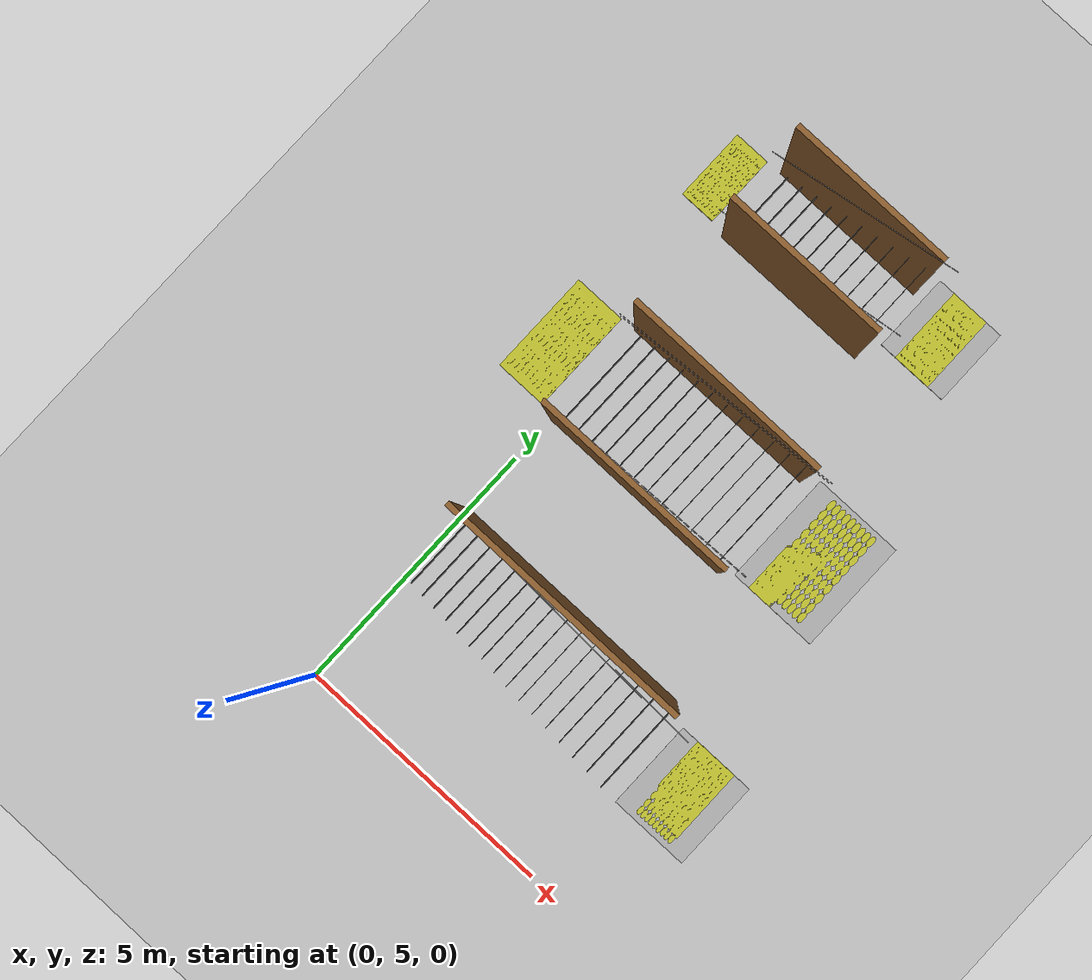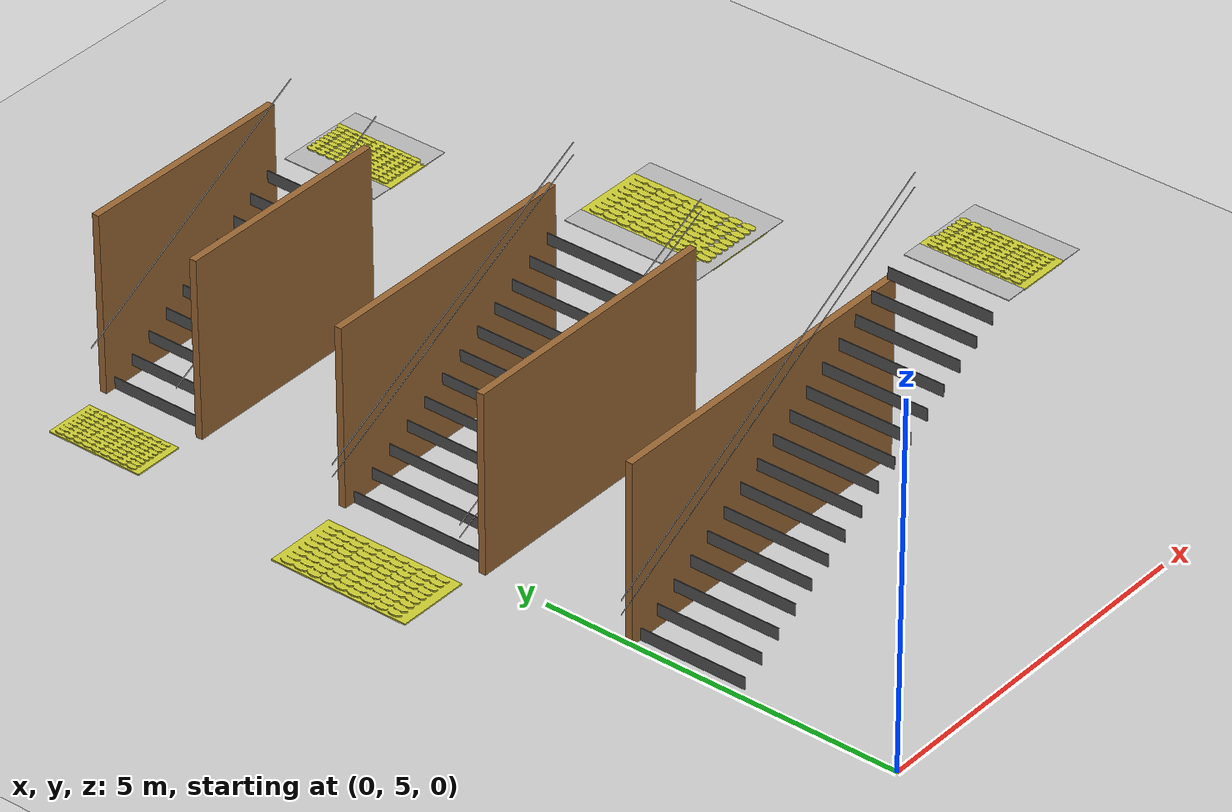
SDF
<sdf version="1.7">
 <world name="default">
  <include><uri>https://fuel.gazebosim.org/1.0/openrobotics/models/Ground%20Plane</uri></include>
  <include><uri>https://fuel.gazebosim.org/1.0/openrobotics/models/Sun</uri></include>
  <model name="tactile_strip_tactile_strip_after_e99f2752-ab1f-4d2a-a1d9-9a706f787795_514fd597-a8f3-4561-81c5-7cfd90c532dc">
   <static>true</static>
   <pose>5.624999999999998 8.0 2.7199999999999993 0 0 0</pose>
   <link name="link">
    <visual name="visual">
     <geometry>
      <mesh><uri>model://data/world-generator/assets/tactile_strip_unit.stl</uri><scale>0.75 1.5 1</scale></mesh>
     </geometry>
     <material><ambient>0.8 0.8 0.2 1</ambient><diffuse>0.8 0.8 0.2 1</diffuse></material>
    </visual>
    <collision name="collision"><geometry><box><size>0.75 1.5 0.02</size></box></geometry></collision>
   </link>
  </model>
  <model name="handrail_handrail_e99f2752-ab1f-4d2a-a1d9-9a706f787795_{'height': 0.95, 'extension_length': 0.3, 'offset_from_wall': 0.05}_4e0cbe52-9989-4e63-aa49-a05e3eff6bc6">
   <static>true</static>
   <pose>2.4 8.7 2.31 0 -0.5155490074589791 0</pose>
   <link name="link">
    <visual name="visual">
     <geometry>
      <mesh>
       <uri>model://data/world-generator/assets/handrail_unit.stl</uri>
       <scale>6.117100687861333 0.25 0.95</scale>
      </mesh>
     </geometry>
     <material><ambient>0.7 0.7 0.7 1</ambient><diffuse>0.7 0.7 0.7 1</diffuse></material>
    </visual>
    <collision name="collision">
     <geometry><cylinder><radius>0.125</radius><length>6.117100687861333</length></cylinder></geometry>
    </collision>
   </link>
  </model>
  <model name="handrail_handrail_e99f2752-ab1f-4d2a-a1d9-9a706f787795_{'height': 0.75, 'extension_length': 0.3, 'offset_from_wall': 0.05}_c0779a72-7dce-4da5-b469-8b89622a1f1a">
   <static>true</static>
   <pose>2.4 8.7 2.1100000000000003 0 -0.5155490074589791 0</pose>
   <link name="link">
    <visual name="visual">
     <geometry>
      <mesh>
       <uri>model://data/world-generator/assets/handrail_unit.stl</uri>
       <scale>6.117100687861333 0.25 0.75</scale>
      </mesh>
     </geometry>
     <material><ambient>0.7 0.7 0.7 1</ambient><diffuse>0.7 0.7 0.7 1</diffuse></material>
    </visual>
    <collision name="collision">
     <geometry><cylinder><radius>0.125</radius><length>6.117100687861333</length></cylinder></geometry>
    </collision>
   </link>
  </model>
  <model name="riser_riser_9279e2e1-6e9f-4bb0-81bc-6a40666967ec_043a1877-ea40-40bc-ae3c-dd26e49cc3e2">
   <static>true</static>
   <pose>0.15 8.0 0.0 0 0 0</pose>
   <link name="link">
    <visual name="visual">
     <geometry>
      <mesh><uri>model://data/world-generator/assets/riser_unit.stl</uri><scale>1 1.5 0.17</scale></mesh>
     </geometry>
     <material><ambient>0.3 0.3 0.3 1</ambient><diffuse>0.3 0.3 0.3 1</diffuse></material>
    </visual>
    <collision name="collision"><geometry><box><size>0.01 1.5 0.17</size></box></geometry></collision>
   </link>
  </model>
  <model name="riser_riser_a43ab379-733a-400a-8d28-5ad033e78ae4_2ded8f81-8b93-46ff-9e88-c8a0ccf28432">
   <static>true</static>
   <pose>0.44999999999999996 8.0 0.17 0 0 0</pose>
   <link name="link">
    <visual name="visual">
     <geometry>
      <mesh><uri>model://data/world-generator/assets/riser_unit.stl</uri><scale>1 1.5 0.17</scale></mesh>
     </geometry>
     <material><ambient>0.3 0.3 0.3 1</ambient><diffuse>0.3 0.3 0.3 1</diffuse></material>
    </visual>
    <collision name="collision"><geometry><box><size>0.01 1.5 0.17</size></box></geometry></collision>
   </link>
  </model>
  <model name="riser_riser_f6267ff2-eea4-447a-8004-f271e1d8e42b_fa8ed3f1-3ff9-4700-8cf1-3847c70e3324">
   <static>true</static>
   <pose>0.75 8.0 0.34 0 0 0</pose>
   <link name="link">
    <visual name="visual">
     <geometry>
      <mesh><uri>model://data/world-generator/assets/riser_unit.stl</uri><scale>1 1.5 0.17</scale></mesh>
     </geometry>
     <material><ambient>0.3 0.3 0.3 1</ambient><diffuse>0.3 0.3 0.3 1</diffuse></material>
    </visual>
    <collision name="collision"><geometry><box><size>0.01 1.5 0.17</size></box></geometry></collision>
   </link>
  </model>
  <model name="riser_riser_685879c6-fb81-41a2-a4d1-3b52f1c5dab6_7fd22378-8c4c-460a-b61f-0bb088b6a48c">
   <static>true</static>
   <pose>1.05 8.0 0.51 0 0 0</pose>
   <link name="link">
    <visual name="visual">
     <geometry>
      <mesh><uri>model://data/world-generator/assets/riser_unit.stl</uri><scale>1 1.5 0.17</scale></mesh>
     </geometry>
     <material><ambient>0.3 0.3 0.3 1</ambient><diffuse>0.3 0.3 0.3 1</diffuse></material>
    </visual>
    <collision name="collision"><geometry><box><size>0.01 1.5 0.17</size></box></geometry></collision>
   </link>
  </model>
  <model name="riser_riser_40349897-c3ab-4b66-9dcf-2767a300302b_2c7cd6ee-ca1e-4143-b250-db4054511e5a">
   <static>true</static>
   <pose>1.35 8.0 0.68 0 0 0</pose>
   <link name="link">
    <visual name="visual">
     <geometry>
      <mesh><uri>model://data/world-generator/assets/riser_unit.stl</uri><scale>1 1.5 0.17</scale></mesh>
     </geometry>
     <material><ambient>0.3 0.3 0.3 1</ambient><diffuse>0.3 0.3 0.3 1</diffuse></material>
    </visual>
    <collision name="collision"><geometry><box><size>0.01 1.5 0.17</size></box></geometry></collision>
   </link>
  </model>
  <model name="riser_riser_d326e7a7-658c-4800-a5f3-da62ebdc0ae2_8bf8be7a-5fbd-45b1-b0d9-92574366be86">
   <static>true</static>
   <pose>1.6500000000000001 8.0 0.8500000000000001 0 0 0</pose>
   <link name="link">
    <visual name="visual">
     <geometry>
      <mesh><uri>model://data/world-generator/assets/riser_unit.stl</uri><scale>1 1.5 0.17</scale></mesh>
     </geometry>
     <material><ambient>0.3 0.3 0.3 1</ambient><diffuse>0.3 0.3 0.3 1</diffuse></material>
    </visual>
    <collision name="collision"><geometry><box><size>0.01 1.5 0.17</size></box></geometry></collision>
   </link>
  </model>
  <model name="riser_riser_106647b5-8b85-4093-895f-2d1a50ac950b_bd218183-47c5-4515-9107-e2ebf88c227e">
   <static>true</static>
   <pose>1.9500000000000002 8.0 1.02 0 0 0</pose>
   <link name="link">
    <visual name="visual">
     <geometry>
      <mesh><uri>model://data/world-generator/assets/riser_unit.stl</uri><scale>1 1.5 0.17</scale></mesh>
     </geometry>
     <material><ambient>0.3 0.3 0.3 1</ambient><diffuse>0.3 0.3 0.3 1</diffuse></material>
    </visual>
    <collision name="collision"><geometry><box><size>0.01 1.5 0.17</size></box></geometry></collision>
   </link>
  </model>
  <model name="riser_riser_70d5e60e-101b-49a8-9775-bf4cb220a134_5b0fa1b0-189c-4769-bbe2-bc9fa8a426d7">
   <static>true</static>
   <pose>2.25 8.0 1.19 0 0 0</pose>
   <link name="link">
    <visual name="visual">
     <geometry>
      <mesh><uri>model://data/world-generator/assets/riser_unit.stl</uri><scale>1 1.5 0.17</scale></mesh>
     </geometry>
     <material><ambient>0.3 0.3 0.3 1</ambient><diffuse>0.3 0.3 0.3 1</diffuse></material>
    </visual>
    <collision name="collision"><geometry><box><size>0.01 1.5 0.17</size></box></geometry></collision>
   </link>
  </model>
  <model name="riser_riser_7f58af73-5285-4088-8d29-ced0b5c631ed_1576f5b9-5923-4c76-a85a-d97effd3f1ce">
   <static>true</static>
   <pose>2.55 8.0 1.3599999999999999 0 0 0</pose>
   <link name="link">
    <visual name="visual">
     <geometry>
      <mesh><uri>model://data/world-generator/assets/riser_unit.stl</uri><scale>1 1.5 0.17</scale></mesh>
     </geometry>
     <material><ambient>0.3 0.3 0.3 1</ambient><diffuse>0.3 0.3 0.3 1</diffuse></material>
    </visual>
    <collision name="collision"><geometry><box><size>0.01 1.5 0.17</size></box></geometry></collision>
   </link>
  </model>
  <model name="riser_riser_e186d29a-a671-4bb2-af89-5989b9bc7903_474552ea-487b-4f61-9c23-02fbe9d76db0">
   <static>true</static>
   <pose>2.8499999999999996 8.0 1.5299999999999998 0 0 0</pose>
   <link name="link">
    <visual name="visual">
     <geometry>
      <mesh><uri>model://data/world-generator/assets/riser_unit.stl</uri><scale>1 1.5 0.17</scale></mesh>
     </geometry>
     <material><ambient>0.3 0.3 0.3 1</ambient><diffuse>0.3 0.3 0.3 1</diffuse></material>
    </visual>
    <collision name="collision"><geometry><box><size>0.01 1.5 0.17</size></box></geometry></collision>
   </link>
  </model>
  <model name="riser_riser_8a2d66bd-610a-4c22-898d-7c5158cfe98a_7b48eccf-0824-4db7-b37e-d10716b933ae">
   <static>true</static>
   <pose>3.1499999999999995 8.0 1.6999999999999997 0 0 0</pose>
   <link name="link">
    <visual name="visual">
     <geometry>
      <mesh><uri>model://data/world-generator/assets/riser_unit.stl</uri><scale>1 1.5 0.17</scale></mesh>
     </geometry>
     <material><ambient>0.3 0.3 0.3 1</ambient><diffuse>0.3 0.3 0.3 1</diffuse></material>
    </visual>
    <collision name="collision"><geometry><box><size>0.01 1.5 0.17</size></box></geometry></collision>
   </link>
  </model>
  <model name="riser_riser_408af33a-df1b-4398-ba9f-c0f7def514e7_bfa01fc2-e137-41ef-a7ac-d5e229311a45">
   <static>true</static>
   <pose>3.4499999999999993 8.0 1.8699999999999997 0 0 0</pose>
   <link name="link">
    <visual name="visual">
     <geometry>
      <mesh><uri>model://data/world-generator/assets/riser_unit.stl</uri><scale>1 1.5 0.17</scale></mesh>
     </geometry>
     <material><ambient>0.3 0.3 0.3 1</ambient><diffuse>0.3 0.3 0.3 1</diffuse></material>
    </visual>
    <collision name="collision"><geometry><box><size>0.01 1.5 0.17</size></box></geometry></collision>
   </link>
  </model>
  <model name="riser_riser_41ccc42d-1cc5-4bfa-9c6c-4adf6c871611_fe7c1311-df24-4163-a91f-0cc55218e23f">
   <static>true</static>
   <pose>3.749999999999999 8.0 2.0399999999999996 0 0 0</pose>
   <link name="link">
    <visual name="visual">
     <geometry>
      <mesh><uri>model://data/world-generator/assets/riser_unit.stl</uri><scale>1 1.5 0.17</scale></mesh>
     </geometry>
     <material><ambient>0.3 0.3 0.3 1</ambient><diffuse>0.3 0.3 0.3 1</diffuse></material>
    </visual>
    <collision name="collision"><geometry><box><size>0.01 1.5 0.17</size></box></geometry></collision>
   </link>
  </model>
  <model name="riser_riser_0e819c5d-6a93-46c0-a9ff-613c3ab32ddb_d1b86434-2ce1-4829-97a3-e57eea6dc603">
   <static>true</static>
   <pose>4.049999999999999 8.0 2.2099999999999995 0 0 0</pose>
   <link name="link">
    <visual name="visual">
     <geometry>
      <mesh><uri>model://data/world-generator/assets/riser_unit.stl</uri><scale>1 1.5 0.17</scale></mesh>
     </geometry>
     <material><ambient>0.3 0.3 0.3 1</ambient><diffuse>0.3 0.3 0.3 1</diffuse></material>
    </visual>
    <collision name="collision"><geometry><box><size>0.01 1.5 0.17</size></box></geometry></collision>
   </link>
  </model>
  <model name="riser_riser_8ed4610e-6e04-4517-a38a-cca709721bdd_89f0c0a3-1fd0-4cf4-a1f5-6c6990491fa8">
   <static>true</static>
   <pose>4.349999999999999 8.0 2.3799999999999994 0 0 0</pose>
   <link name="link">
    <visual name="visual">
     <geometry>
      <mesh><uri>model://data/world-generator/assets/riser_unit.stl</uri><scale>1 1.5 0.17</scale></mesh>
     </geometry>
     <material><ambient>0.3 0.3 0.3 1</ambient><diffuse>0.3 0.3 0.3 1</diffuse></material>
    </visual>
    <collision name="collision"><geometry><box><size>0.01 1.5 0.17</size></box></geometry></collision>
   </link>
  </model>
  <model name="riser_riser_68b2cc15-30e8-4c36-a15a-e7701679fc83_7f7ccbd5-ee7b-43f9-9608-7ec573315ec1">
   <static>true</static>
   <pose>4.649999999999999 8.0 2.5499999999999994 0 0 0</pose>
   <link name="link">
    <visual name="visual">
     <geometry>
      <mesh><uri>model://data/world-generator/assets/riser_unit.stl</uri><scale>1 1.5 0.17</scale></mesh>
     </geometry>
     <material><ambient>0.3 0.3 0.3 1</ambient><diffuse>0.3 0.3 0.3 1</diffuse></material>
    </visual>
    <collision name="collision"><geometry><box><size>0.01 1.5 0.17</size></box></geometry></collision>
   </link>
  </model>
  <model name="wall_stairs_single_flight_right_8a9d1c2e-b309-403f-81af-117c11bf0747">
   <static>true</static>
   <pose>2.4 8.8 0.0 0 0 0.0</pose>
   <link name="link">
    <visual name="visual">
     <geometry>
      <mesh><uri>model://data/world-generator/assets/wall_unit.stl</uri><scale>4.8 1 1</scale></mesh>
     </geometry>
     <material><ambient>0.6 0.4 0.2 1</ambient><diffuse>0.6 0.4 0.2 1</diffuse></material>
    </visual>
    <collision name="collision"><geometry><box><size>4.8 0.1 1.2</size></box></geometry></collision>
   </link>
  </model>
  <model name="platform_stairs_single_flight_landing_e4347f66-9b4a-4370-9b18-dd551f726a3b">
   <static>true</static>
   <pose>5.624999999999998 8.0 2.7199999999999993 0 0 0</pose>
   <link name="link">
    <visual name="visual">
     <geometry>
      <mesh><uri>model://data/world-generator/assets/platform_unit.stl</uri><scale>1.35 1.5 1</scale></mesh>
     </geometry>
    </visual>
    <collision name="collision"><geometry><box><size>1.35 1.5 0.01</size></box></geometry></collision>
   </link>
  </model>
  <model name="tactile_strip_tactile_strip_before_817106a5-c30b-49ad-9c9e-73a6f7a4562b_079eb2d5-0e05-4f57-b725-a9f4de5cbb58">
   <static>true</static>
   <pose>-0.8 12.0 0.0 0 0 0</pose>
   <link name="link">
    <visual name="visual">
     <geometry>
      <mesh><uri>model://data/world-generator/assets/tactile_strip_unit.stl</uri><scale>1.0 2.0 1</scale></mesh>
     </geometry>
     <material><ambient>0.8 0.8 0.2 1</ambient><diffuse>0.8 0.8 0.2 1</diffuse></material>
    </visual>
    <collision name="collision"><geometry><box><size>1.0 2.0 0.02</size></box></geometry></collision>
   </link>
  </model>
  <model name="tactile_strip_tactile_strip_after_817106a5-c30b-49ad-9c9e-73a6f7a4562b_f385c036-54c2-42f3-a181-c4ce01cb619b">
   <static>true</static>
   <pose>4.799999999999999 12.0 1.9199999999999997 0 0 0</pose>
   <link name="link">
    <visual name="visual">
     <geometry>
      <mesh><uri>model://data/world-generator/assets/tactile_strip_unit.stl</uri><scale>1.0 2.0 1</scale></mesh>
     </geometry>
     <material><ambient>0.8 0.8 0.2 1</ambient><diffuse>0.8 0.8 0.2 1</diffuse></material>
    </visual>
    <collision name="collision"><geometry><box><size>1.0 2.0 0.02</size></box></geometry></collision>
   </link>
  </model>
  <model name="handrail_handrail_817106a5-c30b-49ad-9c9e-73a6f7a4562b_{'height': 0.92, 'extension_length': 0.3, 'offset_from_wall': 0.05}_a5023ef4-65f4-4ebd-9fd3-0c7590a298f1">
   <static>true</static>
   <pose>1.92 11.05 1.88 0 -0.4636476090008061 0</pose>
   <link name="link">
    <visual name="visual">
     <geometry>
      <mesh>
       <uri>model://data/world-generator/assets/handrail_unit.stl</uri>
       <scale>4.893250516799596 0.25 0.92</scale>
      </mesh>
     </geometry>
     <material><ambient>0.7 0.7 0.7 1</ambient><diffuse>0.7 0.7 0.7 1</diffuse></material>
    </visual>
    <collision name="collision">
     <geometry><cylinder><radius>0.125</radius><length>4.893250516799596</length></cylinder></geometry>
    </collision>
   </link>
  </model>
  <model name="handrail_handrail_817106a5-c30b-49ad-9c9e-73a6f7a4562b_{'height': 0.92, 'extension_length': 0.3, 'offset_from_wall': 0.05}_169be045-e5ca-420a-96e6-f7e57d24af40">
   <static>true</static>
   <pose>1.92 12.95 1.88 0 -0.4636476090008061 0</pose>
   <link name="link">
    <visual name="visual">
     <geometry>
      <mesh>
       <uri>model://data/world-generator/assets/handrail_unit.stl</uri>
       <scale>4.893250516799596 0.25 0.92</scale>
      </mesh>
     </geometry>
     <material><ambient>0.7 0.7 0.7 1</ambient><diffuse>0.7 0.7 0.7 1</diffuse></material>
    </visual>
    <collision name="collision">
     <geometry><cylinder><radius>0.125</radius><length>4.893250516799596</length></cylinder></geometry>
    </collision>
   </link>
  </model>
  <model name="handrail_handrail_817106a5-c30b-49ad-9c9e-73a6f7a4562b_{'height': 0.75, 'extension_length': 0.3, 'offset_from_wall': 0.05}_fc9253a9-f1dc-400d-917d-17734c4851c7">
   <static>true</static>
   <pose>1.92 11.05 1.71 0 -0.4636476090008061 0</pose>
   <link name="link">
    <visual name="visual">
     <geometry>
      <mesh>
       <uri>model://data/world-generator/assets/handrail_unit.stl</uri>
       <scale>4.893250516799596 0.25 0.75</scale>
      </mesh>
     </geometry>
     <material><ambient>0.7 0.7 0.7 1</ambient><diffuse>0.7 0.7 0.7 1</diffuse></material>
    </visual>
    <collision name="collision">
     <geometry><cylinder><radius>0.125</radius><length>4.893250516799596</length></cylinder></geometry>
    </collision>
   </link>
  </model>
  <model name="handrail_handrail_817106a5-c30b-49ad-9c9e-73a6f7a4562b_{'height': 0.75, 'extension_length': 0.3, 'offset_from_wall': 0.05}_f16e0197-0557-437e-82ed-b646c5b52c56">
   <static>true</static>
   <pose>1.92 12.95 1.71 0 -0.4636476090008061 0</pose>
   <link name="link">
    <visual name="visual">
     <geometry>
      <mesh>
       <uri>model://data/world-generator/assets/handrail_unit.stl</uri>
       <scale>4.893250516799596 0.25 0.75</scale>
      </mesh>
     </geometry>
     <material><ambient>0.7 0.7 0.7 1</ambient><diffuse>0.7 0.7 0.7 1</diffuse></material>
    </visual>
    <collision name="collision">
     <geometry><cylinder><radius>0.125</radius><length>4.893250516799596</length></cylinder></geometry>
    </collision>
   </link>
  </model>
  <model name="riser_riser_60859e8f-9047-4913-9e3b-cdc2966f3d5b_4af5236f-e78a-472f-ad24-ed929725d123">
   <static>true</static>
   <pose>0.16 12.0 0.0 0 0 0</pose>
   <link name="link">
    <visual name="visual">
     <geometry>
      <mesh><uri>model://data/world-generator/assets/riser_unit.stl</uri><scale>1 2.0 0.16</scale></mesh>
     </geometry>
     <material><ambient>0.3 0.3 0.3 1</ambient><diffuse>0.3 0.3 0.3 1</diffuse></material>
    </visual>
    <collision name="collision"><geometry><box><size>0.01 2.0 0.16</size></box></geometry></collision>
   </link>
  </model>
  <model name="riser_riser_4d6d418d-06ac-4b28-8186-5007275ddba2_b9c4956c-f1d7-4ae7-9b2b-74297c135da9">
   <static>true</static>
   <pose>0.48 12.0 0.16 0 0 0</pose>
   <link name="link">
    <visual name="visual">
     <geometry>
      <mesh><uri>model://data/world-generator/assets/riser_unit.stl</uri><scale>1 2.0 0.16</scale></mesh>
     </geometry>
     <material><ambient>0.3 0.3 0.3 1</ambient><diffuse>0.3 0.3 0.3 1</diffuse></material>
    </visual>
    <collision name="collision"><geometry><box><size>0.01 2.0 0.16</size></box></geometry></collision>
   </link>
  </model>
  <model name="riser_riser_7f3fb4a0-753d-4ece-b73a-d27928db897c_22f09366-dbf8-466d-a356-964fe852d6d9">
   <static>true</static>
   <pose>0.8 12.0 0.32 0 0 0</pose>
   <link name="link">
    <visual name="visual">
     <geometry>
      <mesh><uri>model://data/world-generator/assets/riser_unit.stl</uri><scale>1 2.0 0.16</scale></mesh>
     </geometry>
     <material><ambient>0.3 0.3 0.3 1</ambient><diffuse>0.3 0.3 0.3 1</diffuse></material>
    </visual>
    <collision name="collision"><geometry><box><size>0.01 2.0 0.16</size></box></geometry></collision>
   </link>
  </model>
  <model name="riser_riser_f01b9740-160f-411d-bbb9-41b453ddd582_a5d63bdb-9c5f-4c6d-8176-d91d710af556">
   <static>true</static>
   <pose>1.12 12.0 0.48 0 0 0</pose>
   <link name="link">
    <visual name="visual">
     <geometry>
      <mesh><uri>model://data/world-generator/assets/riser_unit.stl</uri><scale>1 2.0 0.16</scale></mesh>
     </geometry>
     <material><ambient>0.3 0.3 0.3 1</ambient><diffuse>0.3 0.3 0.3 1</diffuse></material>
    </visual>
    <collision name="collision"><geometry><box><size>0.01 2.0 0.16</size></box></geometry></collision>
   </link>
  </model>
  <model name="riser_riser_d2326db4-6c51-438b-b310-f0656f99d33f_9740ca08-2308-4970-9044-0da3f588fd1e">
   <static>true</static>
   <pose>1.4400000000000002 12.0 0.64 0 0 0</pose>
   <link name="link">
    <visual name="visual">
     <geometry>
      <mesh><uri>model://data/world-generator/assets/riser_unit.stl</uri><scale>1 2.0 0.16</scale></mesh>
     </geometry>
     <material><ambient>0.3 0.3 0.3 1</ambient><diffuse>0.3 0.3 0.3 1</diffuse></material>
    </visual>
    <collision name="collision"><geometry><box><size>0.01 2.0 0.16</size></box></geometry></collision>
   </link>
  </model>
  <model name="riser_riser_0447e8a4-d497-4ffb-8084-a50caf41e02d_36e6a4c5-48bd-44f2-9bbc-2a297dc89f92">
   <static>true</static>
   <pose>1.7600000000000002 12.0 0.8 0 0 0</pose>
   <link name="link">
    <visual name="visual">
     <geometry>
      <mesh><uri>model://data/world-generator/assets/riser_unit.stl</uri><scale>1 2.0 0.16</scale></mesh>
     </geometry>
     <material><ambient>0.3 0.3 0.3 1</ambient><diffuse>0.3 0.3 0.3 1</diffuse></material>
    </visual>
    <collision name="collision"><geometry><box><size>0.01 2.0 0.16</size></box></geometry></collision>
   </link>
  </model>
  <model name="riser_riser_66c54df9-f43e-4ccf-8276-c6a87882a647_e933c164-602c-4da4-9fa8-39ad1291ee04">
   <static>true</static>
   <pose>2.08 12.0 0.9600000000000001 0 0 0</pose>
   <link name="link">
    <visual name="visual">
     <geometry>
      <mesh><uri>model://data/world-generator/assets/riser_unit.stl</uri><scale>1 2.0 0.16</scale></mesh>
     </geometry>
     <material><ambient>0.3 0.3 0.3 1</ambient><diffuse>0.3 0.3 0.3 1</diffuse></material>
    </visual>
    <collision name="collision"><geometry><box><size>0.01 2.0 0.16</size></box></geometry></collision>
   </link>
  </model>
  <model name="riser_riser_54d968d7-f680-473b-89ae-0577398d9c61_c31b982b-5ff0-4e51-af22-24c00cd6c813">
   <static>true</static>
   <pose>2.4 12.0 1.12 0 0 0</pose>
   <link name="link">
    <visual name="visual">
     <geometry>
      <mesh><uri>model://data/world-generator/assets/riser_unit.stl</uri><scale>1 2.0 0.16</scale></mesh>
     </geometry>
     <material><ambient>0.3 0.3 0.3 1</ambient><diffuse>0.3 0.3 0.3 1</diffuse></material>
    </visual>
    <collision name="collision"><geometry><box><size>0.01 2.0 0.16</size></box></geometry></collision>
   </link>
  </model>
  <model name="riser_riser_30348ee2-5861-4671-8c72-7b4808a80d94_39935a83-18cc-4cab-97dc-5f3f0c011bbe">
   <static>true</static>
   <pose>2.7199999999999998 12.0 1.28 0 0 0</pose>
   <link name="link">
    <visual name="visual">
     <geometry>
      <mesh><uri>model://data/world-generator/assets/riser_unit.stl</uri><scale>1 2.0 0.16</scale></mesh>
     </geometry>
     <material><ambient>0.3 0.3 0.3 1</ambient><diffuse>0.3 0.3 0.3 1</diffuse></material>
    </visual>
    <collision name="collision"><geometry><box><size>0.01 2.0 0.16</size></box></geometry></collision>
   </link>
  </model>
  <model name="riser_riser_9e1fa094-8c91-47dc-83ac-0b97b33951f8_64d1853f-7d5b-48b1-9e85-0a9643a8689c">
   <static>true</static>
   <pose>3.0399999999999996 12.0 1.44 0 0 0</pose>
   <link name="link">
    <visual name="visual">
     <geometry>
      <mesh><uri>model://data/world-generator/assets/riser_unit.stl</uri><scale>1 2.0 0.16</scale></mesh>
     </geometry>
     <material><ambient>0.3 0.3 0.3 1</ambient><diffuse>0.3 0.3 0.3 1</diffuse></material>
    </visual>
    <collision name="collision"><geometry><box><size>0.01 2.0 0.16</size></box></geometry></collision>
   </link>
  </model>
  <model name="riser_riser_4272bc71-1e53-4c97-9278-36210c16e1b6_b9173340-6494-480c-ba5a-7ca464d0b036">
   <static>true</static>
   <pose>3.3599999999999994 12.0 1.5999999999999999 0 0 0</pose>
   <link name="link">
    <visual name="visual">
     <geometry>
      <mesh><uri>model://data/world-generator/assets/riser_unit.stl</uri><scale>1 2.0 0.16</scale></mesh>
     </geometry>
     <material><ambient>0.3 0.3 0.3 1</ambient><diffuse>0.3 0.3 0.3 1</diffuse></material>
    </visual>
    <collision name="collision"><geometry><box><size>0.01 2.0 0.16</size></box></geometry></collision>
   </link>
  </model>
  <model name="riser_riser_b97e880f-3c15-4672-966e-1b3995b3e23b_c62c9528-dc23-4916-90c4-0b6cc0e002d4">
   <static>true</static>
   <pose>3.6799999999999993 12.0 1.7599999999999998 0 0 0</pose>
   <link name="link">
    <visual name="visual">
     <geometry>
      <mesh><uri>model://data/world-generator/assets/riser_unit.stl</uri><scale>1 2.0 0.16</scale></mesh>
     </geometry>
     <material><ambient>0.3 0.3 0.3 1</ambient><diffuse>0.3 0.3 0.3 1</diffuse></material>
    </visual>
    <collision name="collision"><geometry><box><size>0.01 2.0 0.16</size></box></geometry></collision>
   </link>
  </model>
  <model name="wall_staircase_3_left_be99c784-be5d-46ef-8f56-80f141c6423c">
   <static>true</static>
   <pose>1.92 10.95 0.0 0 0 0.0</pose>
   <link name="link">
    <visual name="visual">
     <geometry>
      <mesh><uri>model://data/world-generator/assets/wall_unit.stl</uri><scale>3.84 1 1</scale></mesh>
     </geometry>
     <material><ambient>0.6 0.4 0.2 1</ambient><diffuse>0.6 0.4 0.2 1</diffuse></material>
    </visual>
    <collision name="collision"><geometry><box><size>3.84 0.1 1.2</size></box></geometry></collision>
   </link>
  </model>
  <model name="wall_staircase_3_right_8a267ada-459d-482a-a087-a92764a9908c">
   <static>true</static>
   <pose>1.92 13.05 0.0 0 0 0.0</pose>
   <link name="link">
    <visual name="visual">
     <geometry>
      <mesh><uri>model://data/world-generator/assets/wall_unit.stl</uri><scale>3.84 1 1</scale></mesh>
     </geometry>
     <material><ambient>0.6 0.4 0.2 1</ambient><diffuse>0.6 0.4 0.2 1</diffuse></material>
    </visual>
    <collision name="collision"><geometry><box><size>3.84 0.1 1.2</size></box></geometry></collision>
   </link>
  </model>
  <model name="platform_staircase_3_landing_e483b29a-2fe8-499b-abe0-60b1feed6f01">
   <static>true</static>
   <pose>4.799999999999999 12.0 1.9199999999999997 0 0 0</pose>
   <link name="link">
    <visual name="visual">
     <geometry>
      <mesh><uri>model://data/world-generator/assets/platform_unit.stl</uri><scale>1.6 2.0 1</scale></mesh>
     </geometry>
    </visual>
    <collision name="collision"><geometry><box><size>1.6 2.0 0.01</size></box></geometry></collision>
   </link>
  </model>
  <model name="tactile_strip_tactile_strip_before_e36abb49-b542-44c7-8812-dedb34ffd287_a8b23317-f1dc-4bdc-9dcd-2cf0de8e9844">
   <static>true</static>
   <pose>-0.6499999999999999 16.0 0.0 0 0 0</pose>
   <link name="link">
    <visual name="visual">
     <geometry>
      <mesh><uri>model://data/world-generator/assets/tactile_strip_unit.stl</uri><scale>0.7 1.4 1</scale></mesh>
     </geometry>
     <material><ambient>0.8 0.8 0.2 1</ambient><diffuse>0.8 0.8 0.2 1</diffuse></material>
    </visual>
    <collision name="collision"><geometry><box><size>0.7 1.4 0.02</size></box></geometry></collision>
   </link>
  </model>
  <model name="tactile_strip_tactile_strip_after_e36abb49-b542-44c7-8812-dedb34ffd287_4293bdb1-4ae0-4c99-9a49-409e5eed1985">
   <static>true</static>
   <pose>3.9050000000000002 16.0 1.6500000000000001 0 0 0</pose>
   <link name="link">
    <visual name="visual">
     <geometry>
      <mesh><uri>model://data/world-generator/assets/tactile_strip_unit.stl</uri><scale>0.7 1.4 1</scale></mesh>
     </geometry>
     <material><ambient>0.8 0.8 0.2 1</ambient><diffuse>0.8 0.8 0.2 1</diffuse></material>
    </visual>
    <collision name="collision"><geometry><box><size>0.7 1.4 0.02</size></box></geometry></collision>
   </link>
  </model>
  <model name="handrail_handrail_e36abb49-b542-44c7-8812-dedb34ffd287_{'height': 0.95, 'extension_length': 0.3, 'offset_from_wall': 0.04}_fd5f6d40-3d95-4369-aff4-687989071b10">
   <static>true</static>
   <pose>1.55 15.34 1.775 0 -0.4891198055115287 0</pose>
   <link name="link">
    <visual name="visual">
     <geometry>
      <mesh>
       <uri>model://data/world-generator/assets/handrail_unit.stl</uri>
       <scale>4.111765937530575 0.25 0.95</scale>
      </mesh>
     </geometry>
     <material><ambient>0.7 0.7 0.7 1</ambient><diffuse>0.7 0.7 0.7 1</diffuse></material>
    </visual>
    <collision name="collision">
     <geometry><cylinder><radius>0.125</radius><length>4.111765937530575</length></cylinder></geometry>
    </collision>
   </link>
  </model>
  <model name="handrail_handrail_e36abb49-b542-44c7-8812-dedb34ffd287_{'height': 0.95, 'extension_length': 0.3, 'offset_from_wall': 0.04}_46324cd8-ac39-454e-8299-36fdf67e2049">
   <static>true</static>
   <pose>1.55 16.66 1.775 0 -0.4891198055115287 0</pose>
   <link name="link">
    <visual name="visual">
     <geometry>
      <mesh>
       <uri>model://data/world-generator/assets/handrail_unit.stl</uri>
       <scale>4.111765937530575 0.25 0.95</scale>
      </mesh>
     </geometry>
     <material><ambient>0.7 0.7 0.7 1</ambient><diffuse>0.7 0.7 0.7 1</diffuse></material>
    </visual>
    <collision name="collision">
     <geometry><cylinder><radius>0.125</radius><length>4.111765937530575</length></cylinder></geometry>
    </collision>
   </link>
  </model>
  <model name="riser_riser_83c14b63-c0e9-4660-9677-eb5c935dbb13_f8b04cb4-7147-452f-b928-7ab9296ead32">
   <static>true</static>
   <pose>0.155 16.0 0.0 0 0 0</pose>
   <link name="link">
    <visual name="visual">
     <geometry>
      <mesh><uri>model://data/world-generator/assets/riser_unit.stl</uri><scale>1 1.4 0.165</scale></mesh>
     </geometry>
     <material><ambient>0.3 0.3 0.3 1</ambient><diffuse>0.3 0.3 0.3 1</diffuse></material>
    </visual>
    <collision name="collision"><geometry><box><size>0.01 1.4 0.165</size></box></geometry></collision>
   </link>
  </model>
  <model name="riser_riser_cd3fc805-6ba8-460d-881b-817b3506393a_3c793191-6ce9-4d9c-b792-82735fba29ab">
   <static>true</static>
   <pose>0.46499999999999997 16.0 0.165 0 0 0</pose>
   <link name="link">
    <visual name="visual">
     <geometry>
      <mesh><uri>model://data/world-generator/assets/riser_unit.stl</uri><scale>1 1.4 0.165</scale></mesh>
     </geometry>
     <material><ambient>0.3 0.3 0.3 1</ambient><diffuse>0.3 0.3 0.3 1</diffuse></material>
    </visual>
    <collision name="collision"><geometry><box><size>0.01 1.4 0.165</size></box></geometry></collision>
   </link>
  </model>
  <model name="riser_riser_8854112d-5c34-4948-a525-cdc3c7ee2952_d6b0c1a2-2411-4c9b-b209-d39ac507fa95">
   <static>true</static>
   <pose>0.7749999999999999 16.0 0.33 0 0 0</pose>
   <link name="link">
    <visual name="visual">
     <geometry>
      <mesh><uri>model://data/world-generator/assets/riser_unit.stl</uri><scale>1 1.4 0.165</scale></mesh>
     </geometry>
     <material><ambient>0.3 0.3 0.3 1</ambient><diffuse>0.3 0.3 0.3 1</diffuse></material>
    </visual>
    <collision name="collision"><geometry><box><size>0.01 1.4 0.165</size></box></geometry></collision>
   </link>
  </model>
  <model name="riser_riser_48faa7bb-57e8-4a9b-8549-d11afe79a981_1db5cd11-ba82-4c24-8cb2-0064cfb6c297">
   <static>true</static>
   <pose>1.085 16.0 0.495 0 0 0</pose>
   <link name="link">
    <visual name="visual">
     <geometry>
      <mesh><uri>model://data/world-generator/assets/riser_unit.stl</uri><scale>1 1.4 0.165</scale></mesh>
     </geometry>
     <material><ambient>0.3 0.3 0.3 1</ambient><diffuse>0.3 0.3 0.3 1</diffuse></material>
    </visual>
    <collision name="collision"><geometry><box><size>0.01 1.4 0.165</size></box></geometry></collision>
   </link>
  </model>
  <model name="riser_riser_f9f695dd-d5a8-4b15-b152-ebd794464c0e_405866c0-4766-497e-89ba-7062d57e36e0">
   <static>true</static>
   <pose>1.395 16.0 0.66 0 0 0</pose>
   <link name="link">
    <visual name="visual">
     <geometry>
      <mesh><uri>model://data/world-generator/assets/riser_unit.stl</uri><scale>1 1.4 0.165</scale></mesh>
     </geometry>
     <material><ambient>0.3 0.3 0.3 1</ambient><diffuse>0.3 0.3 0.3 1</diffuse></material>
    </visual>
    <collision name="collision"><geometry><box><size>0.01 1.4 0.165</size></box></geometry></collision>
   </link>
  </model>
  <model name="riser_riser_79499e3d-4412-4141-a36c-c334ccffa4e7_a6ec0505-113d-4f32-b2a5-57c3f168e2d0">
   <static>true</static>
   <pose>1.705 16.0 0.8250000000000001 0 0 0</pose>
   <link name="link">
    <visual name="visual">
     <geometry>
      <mesh><uri>model://data/world-generator/assets/riser_unit.stl</uri><scale>1 1.4 0.165</scale></mesh>
     </geometry>
     <material><ambient>0.3 0.3 0.3 1</ambient><diffuse>0.3 0.3 0.3 1</diffuse></material>
    </visual>
    <collision name="collision"><geometry><box><size>0.01 1.4 0.165</size></box></geometry></collision>
   </link>
  </model>
  <model name="riser_riser_78bdb059-15ee-4d0e-9c5f-4ef162ba5c70_898721fc-9300-4f73-87a4-c5528b6b66b9">
   <static>true</static>
   <pose>2.015 16.0 0.9900000000000001 0 0 0</pose>
   <link name="link">
    <visual name="visual">
     <geometry>
      <mesh><uri>model://data/world-generator/assets/riser_unit.stl</uri><scale>1 1.4 0.165</scale></mesh>
     </geometry>
     <material><ambient>0.3 0.3 0.3 1</ambient><diffuse>0.3 0.3 0.3 1</diffuse></material>
    </visual>
    <collision name="collision"><geometry><box><size>0.01 1.4 0.165</size></box></geometry></collision>
   </link>
  </model>
  <model name="riser_riser_c4b88beb-eb3a-4035-8a67-5f8600e96eda_cb75a815-2a58-47f3-bad7-6171297532a6">
   <static>true</static>
   <pose>2.325 16.0 1.155 0 0 0</pose>
   <link name="link">
    <visual name="visual">
     <geometry>
      <mesh><uri>model://data/world-generator/assets/riser_unit.stl</uri><scale>1 1.4 0.165</scale></mesh>
     </geometry>
     <material><ambient>0.3 0.3 0.3 1</ambient><diffuse>0.3 0.3 0.3 1</diffuse></material>
    </visual>
    <collision name="collision"><geometry><box><size>0.01 1.4 0.165</size></box></geometry></collision>
   </link>
  </model>
  <model name="riser_riser_c7d3d2a4-8ffd-401f-8254-0cd32a9de52a_b6f07712-f208-41e1-8bba-7af928be6d90">
   <static>true</static>
   <pose>2.6350000000000002 16.0 1.32 0 0 0</pose>
   <link name="link">
    <visual name="visual">
     <geometry>
      <mesh><uri>model://data/world-generator/assets/riser_unit.stl</uri><scale>1 1.4 0.165</scale></mesh>
     </geometry>
     <material><ambient>0.3 0.3 0.3 1</ambient><diffuse>0.3 0.3 0.3 1</diffuse></material>
    </visual>
    <collision name="collision"><geometry><box><size>0.01 1.4 0.165</size></box></geometry></collision>
   </link>
  </model>
  <model name="riser_riser_189e5e1d-5cf2-45c1-a9ce-160c27d2ddeb_88f5f0cd-bd93-49e0-9eb2-2fc39c4e0b6e">
   <static>true</static>
   <pose>2.9450000000000003 16.0 1.485 0 0 0</pose>
   <link name="link">
    <visual name="visual">
     <geometry>
      <mesh><uri>model://data/world-generator/assets/riser_unit.stl</uri><scale>1 1.4 0.165</scale></mesh>
     </geometry>
     <material><ambient>0.3 0.3 0.3 1</ambient><diffuse>0.3 0.3 0.3 1</diffuse></material>
    </visual>
    <collision name="collision"><geometry><box><size>0.01 1.4 0.165</size></box></geometry></collision>
   </link>
  </model>
  <model name="wall_staircase_4_left_aaf5bcb4-f415-4911-9d70-418ade560c8c">
   <static>true</static>
   <pose>1.55 15.25 0.0 0 0 0.0</pose>
   <link name="link">
    <visual name="visual">
     <geometry>
      <mesh><uri>model://data/world-generator/assets/wall_unit.stl</uri><scale>3.1 1 1</scale></mesh>
     </geometry>
     <material><ambient>0.6 0.4 0.2 1</ambient><diffuse>0.6 0.4 0.2 1</diffuse></material>
    </visual>
    <collision name="collision"><geometry><box><size>3.1 0.1 1.2</size></box></geometry></collision>
   </link>
  </model>
  <model name="wall_staircase_4_right_64ac0490-efb8-4102-9a6f-f19913e97756">
   <static>true</static>
   <pose>1.55 16.75 0.0 0 0 0.0</pose>
   <link name="link">
    <visual name="visual">
     <geometry>
      <mesh><uri>model://data/world-generator/assets/wall_unit.stl</uri><scale>3.1 1 1</scale></mesh>
     </geometry>
     <material><ambient>0.6 0.4 0.2 1</ambient><diffuse>0.6 0.4 0.2 1</diffuse></material>
    </visual>
    <collision name="collision"><geometry><box><size>3.1 0.1 1.2</size></box></geometry></collision>
   </link>
  </model>
  <model name="platform_staircase_4_landing_c6441fb6-069f-4c7d-bcea-093cb418c50f">
   <static>true</static>
   <pose>3.9050000000000002 16.0 1.6500000000000001 0 0 0</pose>
   <link name="link">
    <visual name="visual">
     <geometry>
      <mesh>
       <uri>model://data/world-generator/assets/platform_unit.stl</uri>
       <scale>1.2999999999999998 1.4 1</scale>
      </mesh>
     </geometry>
    </visual>
    <collision name="collision">
     <geometry><box><size>1.2999999999999998 1.4 0.01</size></box></geometry>
    </collision>
   </link>
  </model>
 </world>
</sdf>
